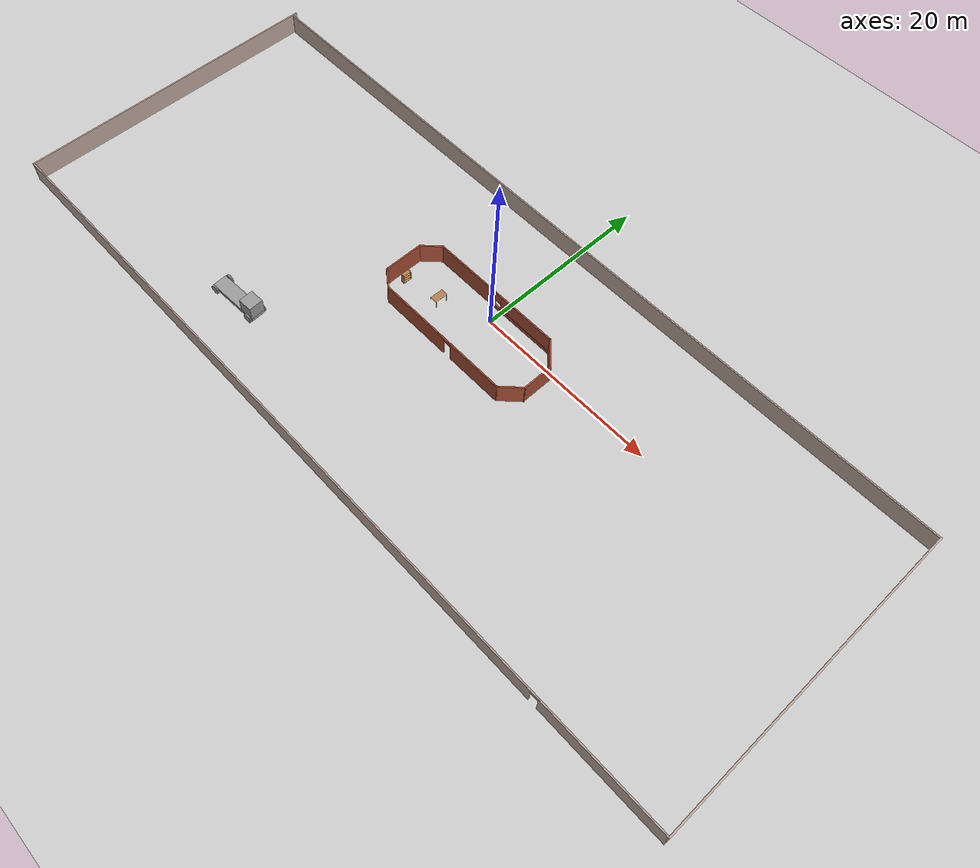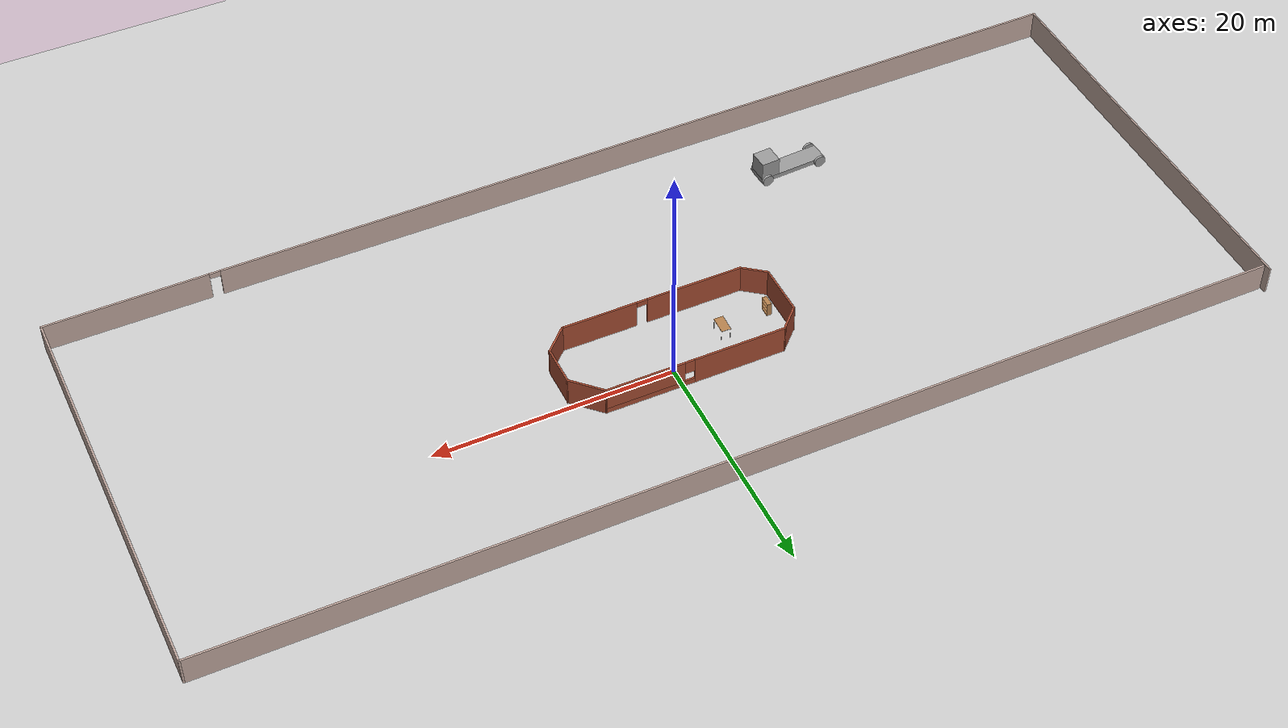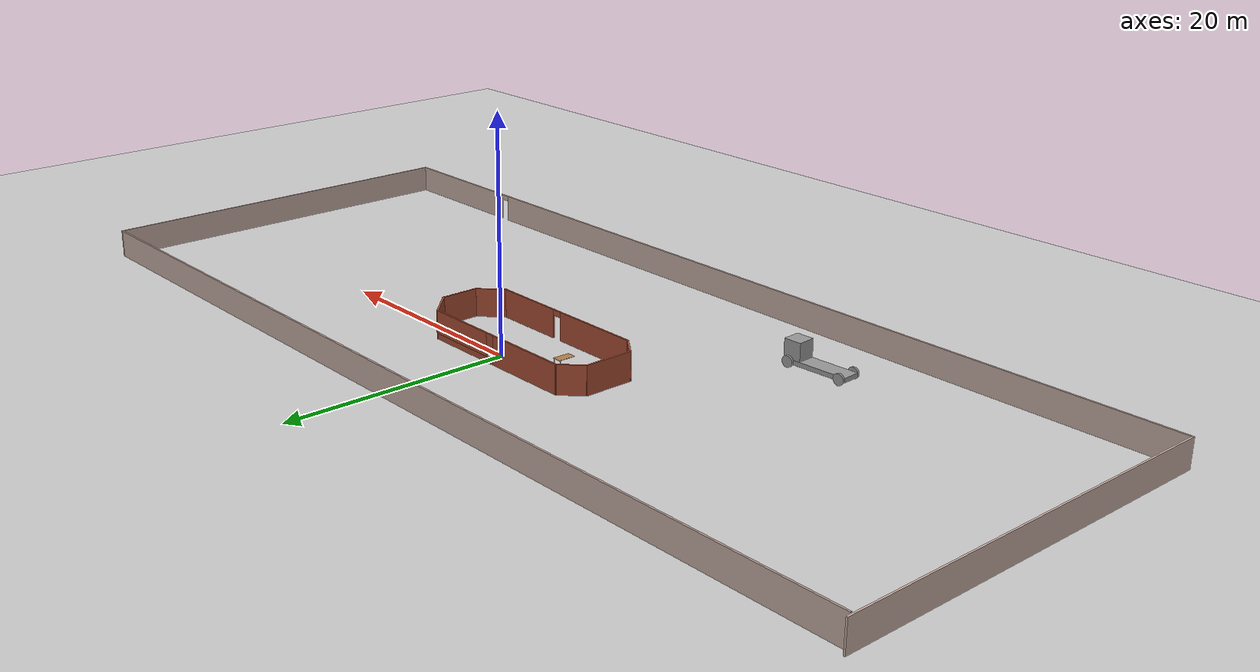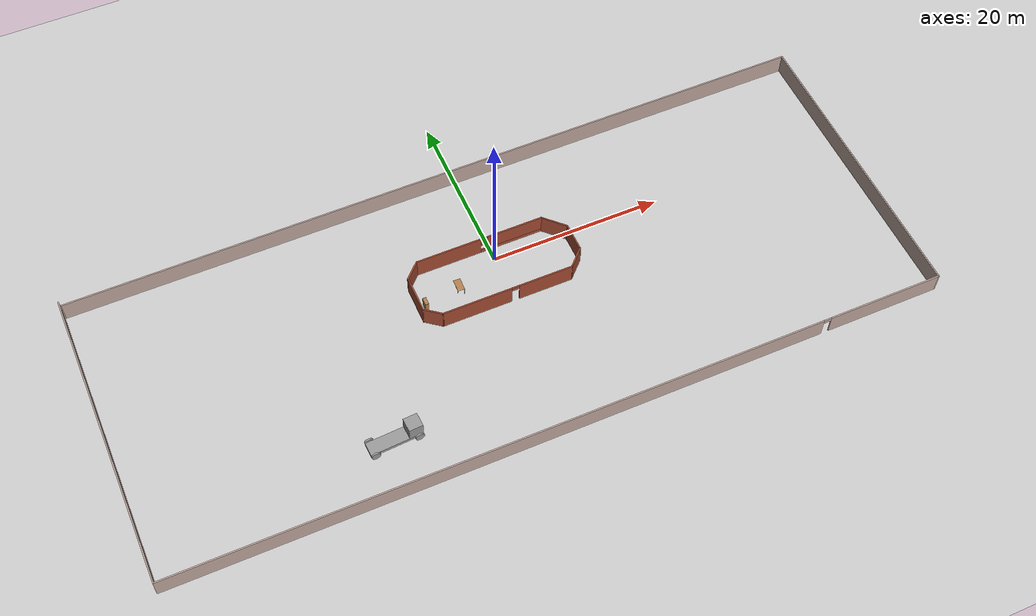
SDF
<sdf version="1.6">
 <world name="default">
  <model name="ground_plane">
   <static>1</static>
   <link name="link">
    <collision name="collision">
     <geometry><plane><normal>0 0 1</normal><size>100 100</size></plane></geometry>
     <surface>
      <contact><collide_bitmask>65535</collide_bitmask></contact>
      <friction><ode><mu>100</mu><mu2>50</mu2></ode></friction>
     </surface>
    </collision>
    <visual name="visual">
     <cast_shadows>0</cast_shadows>
     <geometry><plane><normal>0 0 1</normal><size>100 100</size></plane></geometry>
     <material>
      <script><uri>file://media/materials/scripts/gazebo.material</uri><name>Gazebo/Grey</name></script>
     </material>
    </visual>
   </link>
  </model>
  <model name="test_course">
   <pose>-1.64015 -5.41158 0 0 -0 0</pose>
   <link name="Wall_22">
    <pose>0.481774 7.006 0 0 -0 0</pose>
    <visual name="Wall_22_Visual_0">
     <pose>-3.73862 0 1.25 0 -0 0</pose>
     <geometry><box><size>7.77276 0.15 2.5</size></box></geometry>
     <material>
      <script><uri>file://media/materials/scripts/gazebo.material</uri><name>Gazebo/Bricks</name></script>
      <ambient>1 1 1 1</ambient>
     </material>
     <meta><layer>0</layer></meta>
    </visual>
    <collision name="Wall_22_Collision_0">
     <geometry><box><size>7.77276 0.15 2.5</size></box></geometry>
     <pose>-3.73862 0 1.25 0 -0 0</pose>
    </collision>
    <visual name="Wall_22_Visual_1">
     <pose>3.88638 0 0.25 0 -0 0</pose>
     <geometry><box><size>7.47724 0.15 0.5</size></box></geometry>
     <material>
      <script><uri>file://media/materials/scripts/gazebo.material</uri><name>Gazebo/Bricks</name></script>
      <ambient>1 1 1 1</ambient>
     </material>
     <meta><layer>0</layer></meta>
    </visual>
    <collision name="Wall_22_Collision_1">
     <geometry><box><size>7.47724 0.15 0.5</size></box></geometry>
     <pose>3.88638 0 0.25 0 -0 0</pose>
    </collision>
    <visual name="Wall_22_Visual_2">
     <pose>4.28638 0 1.5 0 -0 0</pose>
     <geometry><box><size>6.67723 0.15 2</size></box></geometry>
     <material>
      <script><uri>file://media/materials/scripts/gazebo.material</uri><name>Gazebo/Bricks</name></script>
      <ambient>1 1 1 1</ambient>
     </material>
     <meta><layer>0</layer></meta>
    </visual>
    <collision name="Wall_22_Collision_2">
     <geometry><box><size>6.67723 0.15 2</size></box></geometry>
     <pose>4.28638 0 1.5 0 -0 0</pose>
    </collision>
    <visual name="Wall_22_Visual_3">
     <pose>0.547765 0 1.9 0 -0 0</pose>
     <geometry><box><size>0.8 0.15 1.2</size></box></geometry>
     <material>
      <script><uri>file://media/materials/scripts/gazebo.material</uri><name>Gazebo/Bricks</name></script>
      <ambient>1 1 1 1</ambient>
     </material>
     <meta><layer>0</layer></meta>
    </visual>
    <collision name="Wall_22_Collision_3">
     <geometry><box><size>0.8 0.15 1.2</size></box></geometry>
     <pose>0.547765 0 1.9 0 -0 0</pose>
    </collision>
   </link>
   <link name="Wall_23">
    <collision name="Wall_23_Collision">
     <geometry><box><size>3.25 0.15 2.5</size></box></geometry>
     <pose>0 0 1.25 0 -0 0</pose>
    </collision>
    <visual name="Wall_23_Visual">
     <pose>0 0 1.25 0 -0 0</pose>
     <geometry><box><size>3.25 0.15 2.5</size></box></geometry>
     <material>
      <script><uri>file://media/materials/scripts/gazebo.material</uri><name>Gazebo/Bricks</name></script>
      <ambient>1 1 1 1</ambient>
     </material>
     <meta><layer>0</layer></meta>
    </visual>
    <pose>9.12779 5.90998 0 0 0 -0.785398</pose>
   </link>
   <link name="Wall_24">
    <collision name="Wall_24_Collision">
     <geometry><box><size>3.5 0.15 2.5</size></box></geometry>
     <pose>0 0 1.25 0 -0 0</pose>
    </collision>
    <visual name="Wall_24_Visual">
     <pose>0 0 1.25 0 -0 0</pose>
     <geometry><box><size>3.5 0.15 2.5</size></box></geometry>
     <material>
      <script><uri>file://media/materials/scripts/gazebo.material</uri><name>Gazebo/Bricks</name></script>
      <ambient>1 1 1 1</ambient>
     </material>
     <meta><layer>0</layer></meta>
    </visual>
    <pose>10.2238 3.13897 0 0 0 -1.5708</pose>
   </link>
   <link name="Wall_25">
    <collision name="Wall_25_Collision">
     <geometry><box><size>2.75 0.15 2.5</size></box></geometry>
     <pose>0 0 1.25 0 -0 0</pose>
    </collision>
    <visual name="Wall_25_Visual">
     <pose>0 0 1.25 0 -0 0</pose>
     <geometry><box><size>2.75 0.15 2.5</size></box></geometry>
     <material>
      <script><uri>file://media/materials/scripts/gazebo.material</uri><name>Gazebo/Bricks</name></script>
      <ambient>1 1 1 1</ambient>
     </material>
     <meta><layer>0</layer></meta>
    </visual>
    <pose>9.30457 0.54473 0 0 0 -2.35619</pose>
   </link>
   <link name="Wall_26">
    <pose>0.710327 -0.374508 0 0 -0 3.14159</pose>
    <visual name="Wall_26_Visual_0">
     <pose>-4.55046 0 1.25 0 -0 0</pose>
     <geometry><box><size>6.39908 0.15 2.5</size></box></geometry>
     <material>
      <script><uri>file://media/materials/scripts/gazebo.material</uri><name>Gazebo/Bricks</name></script>
      <ambient>1 1 1 1</ambient>
     </material>
     <meta><layer>0</layer></meta>
    </visual>
    <collision name="Wall_26_Collision_0">
     <geometry><box><size>6.39908 0.15 2.5</size></box></geometry>
     <pose>-4.55046 0 1.25 0 -0 0</pose>
    </collision>
    <visual name="Wall_26_Visual_1">
     <pose>3.64954 0 1.25 0 -0 0</pose>
     <geometry><box><size>8.20092 0.15 2.5</size></box></geometry>
     <material>
      <script><uri>file://media/materials/scripts/gazebo.material</uri><name>Gazebo/Bricks</name></script>
      <ambient>1 1 1 1</ambient>
     </material>
     <meta><layer>0</layer></meta>
    </visual>
    <collision name="Wall_26_Collision_1">
     <geometry><box><size>8.20092 0.15 2.5</size></box></geometry>
     <pose>3.64954 0 1.25 0 -0 0</pose>
    </collision>
    <visual name="Wall_26_Visual_2">
     <pose>-0.900921 0 2.25 0 -0 0</pose>
     <geometry><box><size>0.9 0.15 0.5</size></box></geometry>
     <material>
      <script><uri>file://media/materials/scripts/gazebo.material</uri><name>Gazebo/Bricks</name></script>
      <ambient>1 1 1 1</ambient>
     </material>
     <meta><layer>0</layer></meta>
    </visual>
    <collision name="Wall_26_Collision_2">
     <geometry><box><size>0.9 0.15 0.5</size></box></geometry>
     <pose>-0.900921 0 2.25 0 -0 0</pose>
    </collision>
   </link>
   <link name="Wall_30">
    <collision name="Wall_30_Collision">
     <geometry><box><size>2.5 0.15 2.5</size></box></geometry>
     <pose>0 0 1.25 0 -0 0</pose>
    </collision>
    <visual name="Wall_30_Visual">
     <pose>0 0 1.25 0 -0 0</pose>
     <geometry><box><size>2.5 0.15 2.5</size></box></geometry>
     <material>
      <script><uri>file://media/materials/scripts/gazebo.material</uri><name>Gazebo/Bricks</name></script>
      <ambient>1 1 1 1</ambient>
     </material>
     <meta><layer>0</layer></meta>
    </visual>
    <pose>-7.89908 6.17515 0 0 0 -2.35619</pose>
   </link>
   <link name="Wall_31">
    <collision name="Wall_31_Collision">
     <geometry><box><size>4.5 0.15 2.5</size></box></geometry>
     <pose>0 0 1.25 0 -0 0</pose>
    </collision>
    <visual name="Wall_31_Visual">
     <pose>0 0 1.25 0 -0 0</pose>
     <geometry><box><size>4.5 0.15 2.5</size></box></geometry>
     <material>
      <script><uri>file://media/materials/scripts/gazebo.material</uri><name>Gazebo/Bricks</name></script>
      <ambient>1 1 1 1</ambient>
     </material>
     <meta><layer>0</layer></meta>
    </visual>
    <pose>-8.72993 3.1693 0 0 0 -1.5708</pose>
   </link>
   <link name="Wall_32">
    <collision name="Wall_32_Collision">
     <geometry><box><size>2.38378 0.15 2.5</size></box></geometry>
     <pose>0 0 1.25 0 -0 0</pose>
    </collision>
    <visual name="Wall_32_Visual">
     <pose>0 0 1.25 0 -0 0</pose>
     <geometry><box><size>2.38378 0.15 2.5</size></box></geometry>
     <material>
      <script><uri>file://media/materials/scripts/gazebo.material</uri><name>Gazebo/Bricks</name></script>
      <ambient>1 1 1 1</ambient>
     </material>
     <meta><layer>0</layer></meta>
    </visual>
    <pose>-7.8473 0.309896 0 0 0 -0.65957</pose>
   </link>
   <link name="Wall_34">
    <collision name="Wall_34_Collision">
     <geometry><box><size>35.5 0.15 2.5</size></box></geometry>
     <pose>0 0 1.25 0 -0 0</pose>
    </collision>
    <visual name="Wall_34_Visual">
     <pose>0 0 1.25 0 -0 0</pose>
     <geometry><box><size>35.5 0.15 2.5</size></box></geometry>
     <material>
      <script><uri>file://media/materials/scripts/gazebo.material</uri><name>Gazebo/Grey</name></script>
      <ambient>0.760784 0.662745 0.627451 1</ambient>
     </material>
     <meta><layer>0</layer></meta>
    </visual>
    <pose>-44.55 0 0 0 0 -1.5708</pose>
   </link>
   <link name="Wall_35">
    <pose>0 -17.675 0 0 -0 0</pose>
    <visual name="Wall_35_Visual_0">
     <pose>-7.22805 0 1.25 0 -0 0</pose>
     <geometry><box><size>74.7939 0.15 2.5</size></box></geometry>
     <material>
      <script><uri>file://media/materials/scripts/gazebo.material</uri><name>Gazebo/Grey</name></script>
      <ambient>0.760784 0.662745 0.627451 1</ambient>
     </material>
     <meta><layer>0</layer></meta>
    </visual>
    <collision name="Wall_35_Collision_0">
     <geometry><box><size>74.7939 0.15 2.5</size></box></geometry>
     <pose>-7.22805 0 1.25 0 -0 0</pose>
    </collision>
    <visual name="Wall_35_Visual_1">
     <pose>37.847 0 1.25 0 -0 0</pose>
     <geometry><box><size>13.5561 0.15 2.5</size></box></geometry>
     <material>
      <script><uri>file://media/materials/scripts/gazebo.material</uri><name>Gazebo/Grey</name></script>
      <ambient>0.760784 0.662745 0.627451 1</ambient>
     </material>
     <meta><layer>0</layer></meta>
    </visual>
    <collision name="Wall_35_Collision_1">
     <geometry><box><size>13.5561 0.15 2.5</size></box></geometry>
     <pose>37.847 0 1.25 0 -0 0</pose>
    </collision>
    <visual name="Wall_35_Visual_2">
     <pose>30.6189 0 2.25 0 -0 0</pose>
     <geometry><box><size>0.9 0.15 0.5</size></box></geometry>
     <material>
      <script><uri>file://media/materials/scripts/gazebo.material</uri><name>Gazebo/Grey</name></script>
      <ambient>0.760784 0.662745 0.627451 1</ambient>
     </material>
     <meta><layer>0</layer></meta>
    </visual>
    <collision name="Wall_35_Collision_2">
     <geometry><box><size>0.9 0.15 0.5</size></box></geometry>
     <pose>30.6189 0 2.25 0 -0 0</pose>
    </collision>
   </link>
   <link name="Wall_36">
    <collision name="Wall_36_Collision">
     <geometry><box><size>35 0.15 2.5</size></box></geometry>
     <pose>0 0 1.25 0 -0 0</pose>
    </collision>
    <visual name="Wall_36_Visual">
     <pose>0 0 1.25 0 -0 0</pose>
     <geometry><box><size>35 0.15 2.5</size></box></geometry>
     <material>
      <script><uri>file://media/materials/scripts/gazebo.material</uri><name>Gazebo/Grey</name></script>
      <ambient>0.760784 0.662745 0.627451 1</ambient>
     </material>
     <meta><layer>0</layer></meta>
    </visual>
    <pose>44.55 -0.25 0 0 -0 1.5708</pose>
   </link>
   <link name="Wall_37">
    <collision name="Wall_37_Collision">
     <geometry><box><size>89 0.15 2.5</size></box></geometry>
     <pose>0 0 1.25 0 -0 0</pose>
    </collision>
    <visual name="Wall_37_Visual">
     <pose>0 0 1.25 0 -0 0</pose>
     <geometry><box><size>89 0.15 2.5</size></box></geometry>
     <material>
      <script><uri>file://media/materials/scripts/gazebo.material</uri><name>Gazebo/Grey</name></script>
      <ambient>0.760784 0.662745 0.627451 1</ambient>
     </material>
     <meta><layer>0</layer></meta>
    </visual>
    <pose>0.125 17.175 0 0 -0 3.14159</pose>
   </link>
   <static>1</static>
  </model>
  <model name="truck">
   <link name="link_0">
    <pose>-2e-06 -3e-06 1 0 -0 0</pose>
    <inertial>
     <mass>1</mass>
     <inertia>
      <ixx>0.166667</ixx>
      <ixy>0</ixy>
      <ixz>0</ixz>
      <iyy>0.166667</iyy>
      <iyz>0</iyz>
      <izz>0.166667</izz>
     </inertia>
    </inertial>
    <visual name="visual">
     <geometry><box><size>1.6 1.6 1.6</size></box></geometry>
     <material>
      <lighting>1</lighting>
      <script><uri>file://media/materials/scripts/gazebo.material</uri><name>Gazebo/Grey</name></script>
      <shader type="pixel"><normal_map>__default__</normal_map></shader>
      <ambient>0.3 0.3 0.3 1</ambient>
      <diffuse>0.7 0.7 0.7 1</diffuse>
      <specular>0.01 0.01 0.01 1</specular>
      <emissive>0 0 0 1</emissive>
     </material>
    </visual>
    <collision name="collision">
     <geometry><box><size>1.6 1.6 1.6</size></box></geometry>
     <surface>
      <friction>
       <ode><mu>1</mu><mu2>1</mu2><fdir1>0 0 0</fdir1><slip1>0</slip1><slip2>0</slip2></ode>
       <torsional>
        <coefficient>1</coefficient>
        <patch_radius>0</patch_radius>
        <surface_radius>0</surface_radius>
        <use_patch_radius>1</use_patch_radius>
        <ode><slip>0</slip></ode>
       </torsional>
      </friction>
      <bounce><restitution_coefficient>0</restitution_coefficient><threshold>1e+06</threshold></bounce>
      <contact>
       <collide_without_contact>0</collide_without_contact>
       <collide_without_contact_bitmask>1</collide_without_contact_bitmask>
       <collide_bitmask>1</collide_bitmask>
       <ode>
        <soft_cfm>0</soft_cfm>
        <soft_erp>0.2</soft_erp>
        <kp>1e+13</kp>
        <kd>1</kd>
        <max_vel>0.01</max_vel>
        <min_depth>0</min_depth>
       </ode>
       <bullet>
        <split_impulse>1</split_impulse>
        <split_impulse_penetration_threshold>-0.01</split_impulse_penetration_threshold>
        <soft_cfm>0</soft_cfm>
        <soft_erp>0.2</soft_erp>
        <kp>1e+13</kp>
        <kd>1</kd>
       </bullet>
      </contact>
     </surface>
    </collision>
   </link>
   <link name="link_1">
    <pose>-2e-06 2.2 0 0 -0 0</pose>
    <inertial>
     <mass>1</mass>
     <inertia>
      <ixx>0.166667</ixx>
      <ixy>0</ixy>
      <ixz>0</ixz>
      <iyy>0.166667</iyy>
      <iyz>0</iyz>
      <izz>0.166667</izz>
     </inertia>
    </inertial>
    <visual name="visual">
     <geometry><box><size>1.6 6 0.4</size></box></geometry>
     <material>
      <lighting>1</lighting>
      <script><uri>file://media/materials/scripts/gazebo.material</uri><name>Gazebo/Grey</name></script>
      <shader type="pixel"><normal_map>__default__</normal_map></shader>
      <ambient>0.3 0.3 0.3 1</ambient>
      <diffuse>0.7 0.7 0.7 1</diffuse>
      <specular>0.01 0.01 0.01 1</specular>
      <emissive>0 0 0 1</emissive>
     </material>
    </visual>
    <collision name="collision">
     <geometry><box><size>1.6 6 0.4</size></box></geometry>
     <surface>
      <friction>
       <ode><mu>1</mu><mu2>1</mu2><fdir1>0 0 0</fdir1><slip1>0</slip1><slip2>0</slip2></ode>
       <torsional>
        <coefficient>1</coefficient>
        <patch_radius>0</patch_radius>
        <surface_radius>0</surface_radius>
        <use_patch_radius>1</use_patch_radius>
        <ode><slip>0</slip></ode>
       </torsional>
      </friction>
      <bounce><restitution_coefficient>0</restitution_coefficient><threshold>1e+06</threshold></bounce>
      <contact>
       <collide_without_contact>0</collide_without_contact>
       <collide_without_contact_bitmask>1</collide_without_contact_bitmask>
       <collide_bitmask>1</collide_bitmask>
       <ode>
        <soft_cfm>0</soft_cfm>
        <soft_erp>0.2</soft_erp>
        <kp>1e+13</kp>
        <kd>1</kd>
        <max_vel>0.01</max_vel>
        <min_depth>0</min_depth>
       </ode>
       <bullet>
        <split_impulse>1</split_impulse>
        <split_impulse_penetration_threshold>-0.01</split_impulse_penetration_threshold>
        <soft_cfm>0</soft_cfm>
        <soft_erp>0.2</soft_erp>
        <kp>1e+13</kp>
        <kd>1</kd>
       </bullet>
      </contact>
     </surface>
    </collision>
   </link>
   <link name="link_2">
    <pose>0.900094 -0.299986 -2e-06 1.5707 0 1.5707</pose>
    <inertial>
     <mass>1</mass>
     <inertia><ixx>0.145833</ixx><ixy>0</ixy><ixz>0</ixz><iyy>0.145833</iyy><iyz>0</iyz><izz>0.125</izz></inertia>
    </inertial>
    <visual name="visual">
     <geometry><cylinder><radius>0.5</radius><length>0.2</length></cylinder></geometry>
     <material>
      <lighting>1</lighting>
      <script><uri>file://media/materials/scripts/gazebo.material</uri><name>Gazebo/Grey</name></script>
      <shader type="pixel"><normal_map>__default__</normal_map></shader>
      <ambient>0.3 0.3 0.3 1</ambient>
      <diffuse>0.7 0.7 0.7 1</diffuse>
      <specular>0.01 0.01 0.01 1</specular>
      <emissive>0 0 0 1</emissive>
     </material>
    </visual>
    <collision name="collision">
     <geometry><cylinder><radius>0.5</radius><length>0.2</length></cylinder></geometry>
     <surface>
      <friction>
       <ode><mu>1</mu><mu2>1</mu2><fdir1>0 0 0</fdir1><slip1>0</slip1><slip2>0</slip2></ode>
       <torsional>
        <coefficient>1</coefficient>
        <patch_radius>0</patch_radius>
        <surface_radius>0</surface_radius>
        <use_patch_radius>1</use_patch_radius>
        <ode><slip>0</slip></ode>
       </torsional>
      </friction>
      <bounce><restitution_coefficient>0</restitution_coefficient><threshold>1e+06</threshold></bounce>
      <contact>
       <collide_without_contact>0</collide_without_contact>
       <collide_without_contact_bitmask>1</collide_without_contact_bitmask>
       <collide_bitmask>1</collide_bitmask>
       <ode>
        <soft_cfm>0</soft_cfm>
        <soft_erp>0.2</soft_erp>
        <kp>1e+13</kp>
        <kd>1</kd>
        <max_vel>0.01</max_vel>
        <min_depth>0</min_depth>
       </ode>
       <bullet>
        <split_impulse>1</split_impulse>
        <split_impulse_penetration_threshold>-0.01</split_impulse_penetration_threshold>
        <soft_cfm>0</soft_cfm>
        <soft_erp>0.2</soft_erp>
        <kp>1e+13</kp>
        <kd>1</kd>
       </bullet>
      </contact>
     </surface>
    </collision>
   </link>
   <link name="link_2_clone">
    <pose>-0.940098 -0.299986 -2e-06 1.5707 0 1.5707</pose>
    <inertial>
     <mass>1</mass>
     <inertia><ixx>0.145833</ixx><ixy>0</ixy><ixz>0</ixz><iyy>0.145833</iyy><iyz>0</iyz><izz>0.125</izz></inertia>
    </inertial>
    <visual name="visual">
     <geometry><cylinder><radius>0.5</radius><length>0.2</length></cylinder></geometry>
     <material>
      <lighting>1</lighting>
      <script><uri>file://media/materials/scripts/gazebo.material</uri><name>Gazebo/Grey</name></script>
      <shader type="pixel"><normal_map>__default__</normal_map></shader>
      <ambient>0.3 0.3 0.3 1</ambient>
      <diffuse>0.7 0.7 0.7 1</diffuse>
      <specular>0.01 0.01 0.01 1</specular>
      <emissive>0 0 0 1</emissive>
     </material>
    </visual>
    <collision name="collision">
     <geometry><cylinder><radius>0.5</radius><length>0.2</length></cylinder></geometry>
     <surface>
      <friction>
       <ode><mu>1</mu><mu2>1</mu2><fdir1>0 0 0</fdir1><slip1>0</slip1><slip2>0</slip2></ode>
       <torsional>
        <coefficient>1</coefficient>
        <patch_radius>0</patch_radius>
        <surface_radius>0</surface_radius>
        <use_patch_radius>1</use_patch_radius>
        <ode><slip>0</slip></ode>
       </torsional>
      </friction>
      <bounce><restitution_coefficient>0</restitution_coefficient><threshold>1e+06</threshold></bounce>
      <contact>
       <collide_without_contact>0</collide_without_contact>
       <collide_without_contact_bitmask>1</collide_without_contact_bitmask>
       <collide_bitmask>1</collide_bitmask>
       <ode>
        <soft_cfm>0</soft_cfm>
        <soft_erp>0.2</soft_erp>
        <kp>1e+13</kp>
        <kd>1</kd>
        <max_vel>0.01</max_vel>
        <min_depth>0</min_depth>
       </ode>
       <bullet>
        <split_impulse>1</split_impulse>
        <split_impulse_penetration_threshold>-0.01</split_impulse_penetration_threshold>
        <soft_cfm>0</soft_cfm>
        <soft_erp>0.2</soft_erp>
        <kp>1e+13</kp>
        <kd>1</kd>
       </bullet>
      </contact>
     </surface>
    </collision>
   </link>
   <link name="link_2_clone_0">
    <pose>-0.940098 4.69999 -2e-06 1.5707 0 1.5707</pose>
    <inertial>
     <mass>1</mass>
     <inertia><ixx>0.145833</ixx><ixy>0</ixy><ixz>0</ixz><iyy>0.145833</iyy><iyz>0</iyz><izz>0.125</izz></inertia>
    </inertial>
    <visual name="visual">
     <geometry><cylinder><radius>0.5</radius><length>0.2</length></cylinder></geometry>
     <material>
      <lighting>1</lighting>
      <script><uri>file://media/materials/scripts/gazebo.material</uri><name>Gazebo/Grey</name></script>
      <shader type="pixel"><normal_map>__default__</normal_map></shader>
      <ambient>0.3 0.3 0.3 1</ambient>
      <diffuse>0.7 0.7 0.7 1</diffuse>
      <specular>0.01 0.01 0.01 1</specular>
      <emissive>0 0 0 1</emissive>
     </material>
    </visual>
    <collision name="collision">
     <geometry><cylinder><radius>0.5</radius><length>0.2</length></cylinder></geometry>
     <surface>
      <friction>
       <ode><mu>1</mu><mu2>1</mu2><fdir1>0 0 0</fdir1><slip1>0</slip1><slip2>0</slip2></ode>
       <torsional>
        <coefficient>1</coefficient>
        <patch_radius>0</patch_radius>
        <surface_radius>0</surface_radius>
        <use_patch_radius>1</use_patch_radius>
        <ode><slip>0</slip></ode>
       </torsional>
      </friction>
      <bounce><restitution_coefficient>0</restitution_coefficient><threshold>1e+06</threshold></bounce>
      <contact>
       <collide_without_contact>0</collide_without_contact>
       <collide_without_contact_bitmask>1</collide_without_contact_bitmask>
       <collide_bitmask>1</collide_bitmask>
       <ode>
        <soft_cfm>0</soft_cfm>
        <soft_erp>0.2</soft_erp>
        <kp>1e+13</kp>
        <kd>1</kd>
        <max_vel>0.01</max_vel>
        <min_depth>0</min_depth>
       </ode>
       <bullet>
        <split_impulse>1</split_impulse>
        <split_impulse_penetration_threshold>-0.01</split_impulse_penetration_threshold>
        <soft_cfm>0</soft_cfm>
        <soft_erp>0.2</soft_erp>
        <kp>1e+13</kp>
        <kd>1</kd>
       </bullet>
      </contact>
     </surface>
    </collision>
   </link>
   <link name="link_2_clone_1">
    <pose>0.900094 4.69999 -2e-06 1.5707 0 1.5707</pose>
    <inertial>
     <mass>1</mass>
     <inertia><ixx>0.145833</ixx><ixy>0</ixy><ixz>0</ixz><iyy>0.145833</iyy><iyz>0</iyz><izz>0.125</izz></inertia>
    </inertial>
    <visual name="visual">
     <geometry><cylinder><radius>0.5</radius><length>0.2</length></cylinder></geometry>
     <material>
      <lighting>1</lighting>
      <script><uri>file://media/materials/scripts/gazebo.material</uri><name>Gazebo/Grey</name></script>
      <shader type="pixel"><normal_map>__default__</normal_map></shader>
      <ambient>0.3 0.3 0.3 1</ambient>
      <diffuse>0.7 0.7 0.7 1</diffuse>
      <specular>0.01 0.01 0.01 1</specular>
      <emissive>0 0 0 1</emissive>
     </material>
    </visual>
    <collision name="collision">
     <geometry><cylinder><radius>0.5</radius><length>0.2</length></cylinder></geometry>
     <surface>
      <friction>
       <ode><mu>1</mu><mu2>1</mu2><fdir1>0 0 0</fdir1><slip1>0</slip1><slip2>0</slip2></ode>
       <torsional>
        <coefficient>1</coefficient>
        <patch_radius>0</patch_radius>
        <surface_radius>0</surface_radius>
        <use_patch_radius>1</use_patch_radius>
        <ode><slip>0</slip></ode>
       </torsional>
      </friction>
      <bounce><restitution_coefficient>0</restitution_coefficient><threshold>1e+06</threshold></bounce>
      <contact>
       <collide_without_contact>0</collide_without_contact>
       <collide_without_contact_bitmask>1</collide_without_contact_bitmask>
       <collide_bitmask>1</collide_bitmask>
       <ode>
        <soft_cfm>0</soft_cfm>
        <soft_erp>0.2</soft_erp>
        <kp>1e+13</kp>
        <kd>1</kd>
        <max_vel>0.01</max_vel>
        <min_depth>0</min_depth>
       </ode>
       <bullet>
        <split_impulse>1</split_impulse>
        <split_impulse_penetration_threshold>-0.01</split_impulse_penetration_threshold>
        <soft_cfm>0</soft_cfm>
        <soft_erp>0.2</soft_erp>
        <kp>1e+13</kp>
        <kd>1</kd>
       </bullet>
      </contact>
     </surface>
    </collision>
   </link>
   <joint name="link_0_JOINT_1" type="fixed">
    <parent>link_0</parent>
    <child>link_1</child>
    <physics>
     <ode><limit><cfm>0</cfm><erp>0.2</erp></limit><suspension><cfm>0</cfm><erp>0.2</erp></suspension></ode>
    </physics>
   </joint>
   <joint name="link_1_JOINT_1" type="revolute">
    <parent>link_1</parent>
    <child>link_2</child>
    <axis>
     <xyz>0 0 1</xyz>
     <use_parent_model_frame>0</use_parent_model_frame>
     <limit>
      <lower>-1.79769e+308</lower>
      <upper>1.79769e+308</upper>
      <effort>-1</effort>
      <velocity>-1</velocity>
     </limit>
     <dynamics>
      <spring_reference>0</spring_reference>
      <spring_stiffness>0</spring_stiffness>
      <damping>0</damping>
      <friction>0</friction>
     </dynamics>
    </axis>
    <physics>
     <ode><limit><cfm>0</cfm><erp>0.2</erp></limit><suspension><cfm>0</cfm><erp>0.2</erp></suspension></ode>
    </physics>
   </joint>
   <joint name="link_1_JOINT_2" type="revolute">
    <parent>link_1</parent>
    <child>link_2_clone_1</child>
    <axis>
     <xyz>0 0 1</xyz>
     <use_parent_model_frame>0</use_parent_model_frame>
     <limit>
      <lower>-1.79769e+308</lower>
      <upper>1.79769e+308</upper>
      <effort>-1</effort>
      <velocity>-1</velocity>
     </limit>
     <dynamics>
      <spring_reference>0</spring_reference>
      <spring_stiffness>0</spring_stiffness>
      <damping>0</damping>
      <friction>0</friction>
     </dynamics>
    </axis>
    <physics>
     <ode><limit><cfm>0</cfm><erp>0.2</erp></limit><suspension><cfm>0</cfm><erp>0.2</erp></suspension></ode>
    </physics>
   </joint>
   <joint name="link_1_JOINT_3" type="revolute">
    <parent>link_1</parent>
    <child>link_2_clone</child>
    <axis>
     <xyz>0 0 1</xyz>
     <use_parent_model_frame>0</use_parent_model_frame>
     <limit>
      <lower>-1.79769e+308</lower>
      <upper>1.79769e+308</upper>
      <effort>-1</effort>
      <velocity>-1</velocity>
     </limit>
     <dynamics>
      <spring_reference>0</spring_reference>
      <spring_stiffness>0</spring_stiffness>
      <damping>0</damping>
      <friction>0</friction>
     </dynamics>
    </axis>
    <physics>
     <ode><limit><cfm>0</cfm><erp>0.2</erp></limit><suspension><cfm>0</cfm><erp>0.2</erp></suspension></ode>
    </physics>
   </joint>
   <joint name="link_1_JOINT_4" type="revolute">
    <parent>link_1</parent>
    <child>link_2_clone_0</child>
    <axis>
     <xyz>0 0 1</xyz>
     <use_parent_model_frame>0</use_parent_model_frame>
     <limit>
      <lower>-1.79769e+308</lower>
      <upper>1.79769e+308</upper>
      <effort>-1</effort>
      <velocity>-1</velocity>
     </limit>
     <dynamics>
      <spring_reference>0</spring_reference>
      <spring_stiffness>0</spring_stiffness>
      <damping>0</damping>
      <friction>0</friction>
     </dynamics>
    </axis>
    <physics>
     <ode><limit><cfm>0</cfm><erp>0.2</erp></limit><suspension><cfm>0</cfm><erp>0.2</erp></suspension></ode>
    </physics>
   </joint>
   <static>0</static>
   <pose>-16.5048 -16.6962 0.500003 1e-06 5e-06 1.62548</pose>
  </model>
  <model name="bookshelf">
   <static>1</static>
   <link name="link">
    <inertial><mass>1</mass></inertial>
    <collision name="back">
     <pose>0 0.005 0.6 0 -0 0</pose>
     <geometry><box><size>0.9 0.01 1.2</size></box></geometry>
    </collision>
    <visual name="visual1">
     <pose>0 0.005 0.6 0 -0 0</pose>
     <geometry><box><size>0.9 0.01 1.2</size></box></geometry>
     <material>
      <script><uri>file://media/materials/scripts/gazebo.material</uri><name>Gazebo/Wood</name></script>
     </material>
    </visual>
    <collision name="left_side">
     <pose>0.45 -0.195 0.6 0 -0 0</pose>
     <geometry><box><size>0.02 0.4 1.2</size></box></geometry>
    </collision>
    <visual name="visual2">
     <pose>0.45 -0.195 0.6 0 -0 0</pose>
     <geometry><box><size>0.02 0.4 1.2</size></box></geometry>
     <material>
      <script><uri>file://media/materials/scripts/gazebo.material</uri><name>Gazebo/Wood</name></script>
     </material>
    </visual>
    <collision name="right_side">
     <pose>-0.45 -0.195 0.6 0 -0 0</pose>
     <geometry><box><size>0.02 0.4 1.2</size></box></geometry>
    </collision>
    <visual name="visual3">
     <pose>-0.45 -0.195 0.6 0 -0 0</pose>
     <geometry><box><size>0.02 0.4 1.2</size></box></geometry>
     <material>
      <script><uri>file://media/materials/scripts/gazebo.material</uri><name>Gazebo/Wood</name></script>
     </material>
    </visual>
    <collision name="bottom">
     <pose>0 -0.195 0.03 0 -0 0</pose>
     <geometry><box><size>0.88 0.4 0.06</size></box></geometry>
    </collision>
    <visual name="visual4">
     <pose>0 -0.195 0.03 0 -0 0</pose>
     <geometry><box><size>0.88 0.4 0.06</size></box></geometry>
     <material>
      <script><uri>file://media/materials/scripts/gazebo.material</uri><name>Gazebo/Wood</name></script>
     </material>
    </visual>
    <collision name="top">
     <pose>0 -0.195 1.19 0 -0 0</pose>
     <geometry><box><size>0.88 0.4 0.02</size></box></geometry>
    </collision>
    <visual name="visual5">
     <pose>0 -0.195 1.19 0 -0 0</pose>
     <geometry><box><size>0.88 0.4 0.02</size></box></geometry>
     <material>
      <script><uri>file://media/materials/scripts/gazebo.material</uri><name>Gazebo/Wood</name></script>
     </material>
    </visual>
    <collision name="low_shelf">
     <pose>0 -0.195 0.43 0 -0 0</pose>
     <geometry><box><size>0.88 0.4 0.02</size></box></geometry>
    </collision>
    <visual name="visual6">
     <pose>0 -0.195 0.43 0 -0 0</pose>
     <geometry><box><size>0.88 0.4 0.02</size></box></geometry>
     <material>
      <script><uri>file://media/materials/scripts/gazebo.material</uri><name>Gazebo/Wood</name></script>
     </material>
    </visual>
    <collision name="high_shelf">
     <pose>0 -0.195 0.8 0 -0 0</pose>
     <geometry><box><size>0.88 0.4 0.02</size></box></geometry>
    </collision>
    <visual name="visual7">
     <pose>0 -0.195 0.8 0 -0 0</pose>
     <geometry><box><size>0.88 0.4 0.02</size></box></geometry>
     <material>
      <script><uri>file://media/materials/scripts/gazebo.material</uri><name>Gazebo/Wood</name></script>
     </material>
    </visual>
   </link>
   <pose>-9.63574 -2.73575 0 0 -0 1.54669</pose>
  </model>
  <model name="table">
   <static>1</static>
   <link name="link">
    <collision name="surface">
     <pose>0 0 1 0 -0 0</pose>
     <geometry><box><size>1.5 0.8 0.03</size></box></geometry>
     <surface><friction><ode><mu>0.6</mu><mu2>0.6</mu2></ode></friction></surface>
    </collision>
    <visual name="visual1">
     <pose>0 0 1 0 -0 0</pose>
     <geometry><box><size>1.5 0.8 0.03</size></box></geometry>
     <material>
      <script><uri>file://media/materials/scripts/gazebo.material</uri><name>Gazebo/Wood</name></script>
     </material>
    </visual>
    <collision name="front_left_leg">
     <pose>0.68 0.38 0.5 0 -0 0</pose>
     <geometry><cylinder><radius>0.02</radius><length>1</length></cylinder></geometry>
    </collision>
    <visual name="front_left_leg">
     <pose>0.68 0.38 0.5 0 -0 0</pose>
     <geometry><cylinder><radius>0.02</radius><length>1</length></cylinder></geometry>
     <material>
      <script><uri>file://media/materials/scripts/gazebo.material</uri><name>Gazebo/Grey</name></script>
     </material>
    </visual>
    <collision name="front_right_leg">
     <pose>0.68 -0.38 0.5 0 -0 0</pose>
     <geometry><cylinder><radius>0.02</radius><length>1</length></cylinder></geometry>
    </collision>
    <visual name="front_right_leg">
     <pose>0.68 -0.38 0.5 0 -0 0</pose>
     <geometry><cylinder><radius>0.02</radius><length>1</length></cylinder></geometry>
     <material>
      <script><uri>file://media/materials/scripts/gazebo.material</uri><name>Gazebo/Grey</name></script>
     </material>
    </visual>
    <collision name="back_right_leg">
     <pose>-0.68 -0.38 0.5 0 -0 0</pose>
     <geometry><cylinder><radius>0.02</radius><length>1</length></cylinder></geometry>
    </collision>
    <visual name="back_right_leg">
     <pose>-0.68 -0.38 0.5 0 -0 0</pose>
     <geometry><cylinder><radius>0.02</radius><length>1</length></cylinder></geometry>
     <material>
      <script><uri>file://media/materials/scripts/gazebo.material</uri><name>Gazebo/Grey</name></script>
     </material>
    </visual>
    <collision name="back_left_leg">
     <pose>-0.68 0.38 0.5 0 -0 0</pose>
     <geometry><cylinder><radius>0.02</radius><length>1</length></cylinder></geometry>
    </collision>
    <visual name="back_left_leg">
     <pose>-0.68 0.38 0.5 0 -0 0</pose>
     <geometry><cylinder><radius>0.02</radius><length>1</length></cylinder></geometry>
     <material>
      <script><uri>file://media/materials/scripts/gazebo.material</uri><name>Gazebo/Grey</name></script>
     </material>
    </visual>
   </link>
   <pose>-5.23677 -2.12812 0 0 0 -1.59722</pose>
  </model>
 </world>
</sdf>
